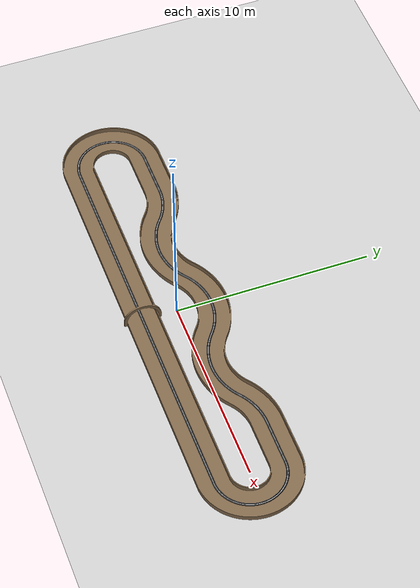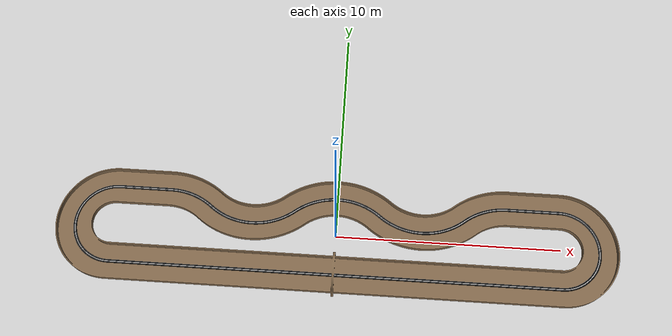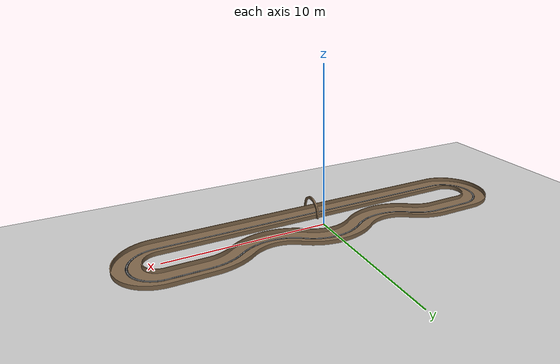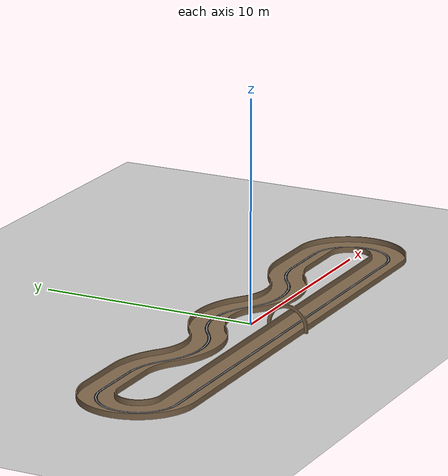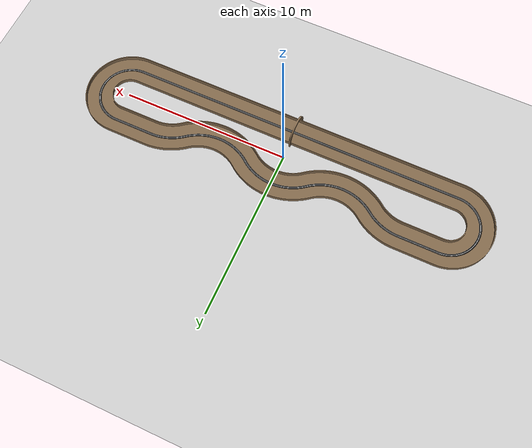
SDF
<?xml version="1.0"?>
<sdf version="1.4">
<world name="robotrace">

  <scene>
    <shadows>0</shadows>
  </scene>

  <include>
    <uri>model://sun</uri>
  </include>

  <gui>
    <camera name='main'>
      <pose>0 0 10 0 1.571 0</pose>
    </camera>
  </gui>

  <model name="ground_plane">
    <static>true</static>
    <link name="link">
      <collision name="collision">
        <geometry>
          <plane>
            <normal>0 0 1</normal>
            <size>150 150</size>
          </plane>
        </geometry>
        <surface>
          <friction>
            <ode>
              <mu>100</mu>
              <mu2>50</mu2>
            </ode>
          </friction>
        </surface>
      </collision>
      <visual name="visual">
        <cast_shadows>false</cast_shadows>
        <geometry>
          <plane>
            <normal>0 0 1</normal>
            <size>150 150</size>
          </plane>
        </geometry>
        <material>
          <script>
            <uri>file://media/materials/scripts/gazebo.material</uri>
            <name>Gazebo/Grey</name>
          </script>
        </material>
      </visual>
    </link>
  </model>

  <model name='robotrace_track'>
      <pose>0 0 0.02 0 0 0</pose>
      <static>1</static>
      <link name='link'>
        <visual name='visual'>
          <geometry>
            <mesh>
              <uri>model://robotrace_gazebo/meshes/robotrace/track_high.dae</uri>
              <scale>1.0 1.0 1.0</scale>
            </mesh>
          </geometry>
        </visual>
        <collision name="collision">
          <geometry>
            <mesh>
              <uri>model://robotrace_gazebo/meshes/robotrace/track_high.dae</uri>
              <scale>1.0 1.0 1.0</scale>
            </mesh>
          </geometry>
          <max_contacts>10</max_contacts>
          <surface>
            <bounce/>
            <friction>
              <ode/>
            </friction>
            <contact>
              <ode/>
            </contact>
		  </surface>
        </collision>
      </link>
    </model>

    <model name='white_line'>
      <pose>0 0 0.021 0 0 0</pose>
      <static>1</static>
      <link name='link'>
        <visual name='visual'>
          <geometry>
            <mesh>
              <uri>model://robotrace_gazebo/meshes/robotrace/white_line.dae</uri>
              <scale>1.0 1.0 1.0</scale>
            </mesh>
          </geometry>
        </visual>
      </link>
    </model>

    <model name='black_line'>
      <pose>0 0 0.0205 0 0 0</pose>
      <static>1</static>
      <link name='link'>
        <visual name='visual'>
          <geometry>
            <mesh>
              <uri>model://robotrace_gazebo/meshes/robotrace/black_line.dae</uri>
              <scale>1.0 1.0 1.0</scale>
            </mesh>
          </geometry>
        </visual>
      </link>
    </model>

</world>
</sdf>
